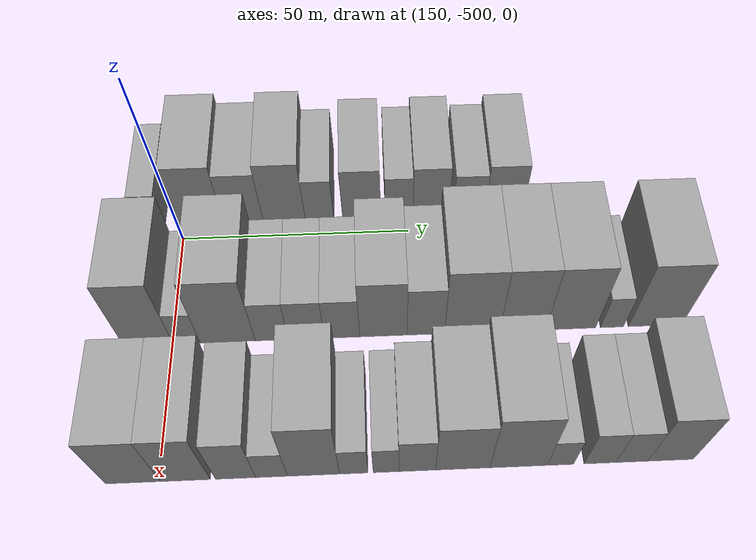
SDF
<sdf version="1.6">
 <world name="default">
  <model name="building_338">
   <static>1</static>
   <pose>137.0000 -507.1311 0 0.000000 0.000000 0.000000</pose>
   <link name="link">
    <pose>0 0 6.00 0 0 0</pose>
    <collision name="collision"><geometry><box><size>20.0000 5.7378 12.0000</size></box></geometry></collision>
    <visual name="visual">
     <cast_shadows>0</cast_shadows>
     <geometry><box><size>20.0000 5.7378 12.0000</size></box></geometry>
     <material>
      <script>
       <uri>model://grey_wall/materials/scripts</uri>
       <uri>model://grey_wall/materials/textures</uri>
       <name>vrc/grey_wall</name>
      </script>
     </material>
    </visual>
   </link>
  </model>
  <model name="building_339">
   <static>1</static>
   <pose>137.0000 -496.1020 0 0.000000 0.000000 0.000000</pose>
   <link name="link">
    <pose>0 0 10.50 0 0 0</pose>
    <collision name="collision"><geometry><box><size>20.0000 10.3204 21.0000</size></box></geometry></collision>
    <visual name="visual">
     <cast_shadows>0</cast_shadows>
     <geometry><box><size>20.0000 10.3204 21.0000</size></box></geometry>
     <material>
      <script>
       <uri>model://grey_wall/materials/scripts</uri>
       <uri>model://grey_wall/materials/textures</uri>
       <name>vrc/grey_wall</name>
      </script>
     </material>
    </visual>
   </link>
  </model>
  <model name="building_340">
   <static>1</static>
   <pose>137.0000 -486.5506 0 0.000000 0.000000 0.000000</pose>
   <link name="link">
    <pose>0 0 9.00 0 0 0</pose>
    <collision name="collision"><geometry><box><size>20.0000 8.7823 18.0000</size></box></geometry></collision>
    <visual name="visual">
     <cast_shadows>0</cast_shadows>
     <geometry><box><size>20.0000 8.7823 18.0000</size></box></geometry>
     <material>
      <script>
       <uri>model://grey_wall/materials/scripts</uri>
       <uri>model://grey_wall/materials/textures</uri>
       <name>vrc/grey_wall</name>
      </script>
     </material>
    </visual>
   </link>
  </model>
  <model name="building_341">
   <static>1</static>
   <pose>137.0000 -477.4898 0 0.000000 0.000000 0.000000</pose>
   <link name="link">
    <pose>0 0 10.50 0 0 0</pose>
    <collision name="collision"><geometry><box><size>20.0000 9.3394 21.0000</size></box></geometry></collision>
    <visual name="visual">
     <cast_shadows>0</cast_shadows>
     <geometry><box><size>20.0000 9.3394 21.0000</size></box></geometry>
     <material>
      <script>
       <uri>model://grey_wall/materials/scripts</uri>
       <uri>model://grey_wall/materials/textures</uri>
       <name>vrc/grey_wall</name>
      </script>
     </material>
    </visual>
   </link>
  </model>
  <model name="building_342">
   <static>1</static>
   <pose>137.0000 -469.6445 0 0.000000 0.000000 0.000000</pose>
   <link name="link">
    <pose>0 0 7.50 0 0 0</pose>
    <collision name="collision"><geometry><box><size>20.0000 6.3512 15.0000</size></box></geometry></collision>
    <visual name="visual">
     <cast_shadows>0</cast_shadows>
     <geometry><box><size>20.0000 6.3512 15.0000</size></box></geometry>
     <material>
      <script>
       <uri>model://grey_wall/materials/scripts</uri>
       <uri>model://grey_wall/materials/textures</uri>
       <name>vrc/grey_wall</name>
      </script>
     </material>
    </visual>
   </link>
  </model>
  <model name="building_343">
   <static>1</static>
   <pose>137.0000 -460.2018 0 0.000000 0.000000 0.000000</pose>
   <link name="link">
    <pose>0 0 9.00 0 0 0</pose>
    <collision name="collision"><geometry><box><size>20.0000 8.5340 18.0000</size></box></geometry></collision>
    <visual name="visual">
     <cast_shadows>0</cast_shadows>
     <geometry><box><size>20.0000 8.5340 18.0000</size></box></geometry>
     <material>
      <script>
       <uri>model://grey_wall/materials/scripts</uri>
       <uri>model://grey_wall/materials/textures</uri>
       <name>vrc/grey_wall</name>
      </script>
     </material>
    </visual>
   </link>
  </model>
  <model name="building_344">
   <static>1</static>
   <pose>137.0000 -451.8562 0 0.000000 0.000000 0.000000</pose>
   <link name="link">
    <pose>0 0 7.50 0 0 0</pose>
    <collision name="collision"><geometry><box><size>20.0000 6.1572 15.0000</size></box></geometry></collision>
    <visual name="visual">
     <cast_shadows>0</cast_shadows>
     <geometry><box><size>20.0000 6.1572 15.0000</size></box></geometry>
     <material>
      <script>
       <uri>model://grey_wall/materials/scripts</uri>
       <uri>model://grey_wall/materials/textures</uri>
       <name>vrc/grey_wall</name>
      </script>
     </material>
    </visual>
   </link>
  </model>
  <model name="building_345">
   <static>1</static>
   <pose>137.0000 -444.7564 0 0.000000 0.000000 0.000000</pose>
   <link name="link">
    <pose>0 0 9.00 0 0 0</pose>
    <collision name="collision"><geometry><box><size>20.0000 8.0424 18.0000</size></box></geometry></collision>
    <visual name="visual">
     <cast_shadows>0</cast_shadows>
     <geometry><box><size>20.0000 8.0424 18.0000</size></box></geometry>
     <material>
      <script>
       <uri>model://grey_wall/materials/scripts</uri>
       <uri>model://grey_wall/materials/textures</uri>
       <name>vrc/grey_wall</name>
      </script>
     </material>
    </visual>
   </link>
  </model>
  <model name="building_346">
   <static>1</static>
   <pose>137.0000 -436.1970 0 0.000000 0.000000 0.000000</pose>
   <link name="link">
    <pose>0 0 7.50 0 0 0</pose>
    <collision name="collision"><geometry><box><size>20.0000 7.0765 15.0000</size></box></geometry></collision>
    <visual name="visual">
     <cast_shadows>0</cast_shadows>
     <geometry><box><size>20.0000 7.0765 15.0000</size></box></geometry>
     <material>
      <script>
       <uri>model://grey_wall/materials/scripts</uri>
       <uri>model://grey_wall/materials/textures</uri>
       <name>vrc/grey_wall</name>
      </script>
     </material>
    </visual>
   </link>
  </model>
  <model name="building_347">
   <static>1</static>
   <pose>137.0000 -428.4018 0 0.000000 0.000000 0.000000</pose>
   <link name="link">
    <pose>0 0 9.00 0 0 0</pose>
    <collision name="collision"><geometry><box><size>20.0000 8.5139 18.0000</size></box></geometry></collision>
    <visual name="visual">
     <cast_shadows>0</cast_shadows>
     <geometry><box><size>20.0000 8.5139 18.0000</size></box></geometry>
     <material>
      <script>
       <uri>model://grey_wall/materials/scripts</uri>
       <uri>model://grey_wall/materials/textures</uri>
       <name>vrc/grey_wall</name>
      </script>
     </material>
    </visual>
   </link>
  </model>
  <model name="building_450">
   <static>1</static>
   <pose>166.0000 -504.8908 0 0.000000 0.000000 0.000000</pose>
   <link name="link">
    <pose>0 0 12.00 0 0 0</pose>
    <collision name="collision"><geometry><box><size>20.0000 10.2185 24.0000</size></box></geometry></collision>
    <visual name="visual">
     <cast_shadows>0</cast_shadows>
     <geometry><box><size>20.0000 10.2185 24.0000</size></box></geometry>
     <material>
      <script>
       <uri>model://grey_wall/materials/scripts</uri>
       <uri>model://grey_wall/materials/textures</uri>
       <name>vrc/grey_wall</name>
      </script>
     </material>
    </visual>
   </link>
  </model>
  <model name="building_451">
   <static>1</static>
   <pose>166.0000 -497.0131 0 0.000000 0.000000 0.000000</pose>
   <link name="link">
    <pose>0 0 6.00 0 0 0</pose>
    <collision name="collision"><geometry><box><size>20.0000 5.5368 12.0000</size></box></geometry></collision>
    <visual name="visual">
     <cast_shadows>0</cast_shadows>
     <geometry><box><size>20.0000 5.5368 12.0000</size></box></geometry>
     <material>
      <script>
       <uri>model://grey_wall/materials/scripts</uri>
       <uri>model://grey_wall/materials/textures</uri>
       <name>vrc/grey_wall</name>
      </script>
     </material>
    </visual>
   </link>
  </model>
  <model name="building_452">
   <static>1</static>
   <pose>166.0000 -488.5651 0 0.000000 0.000000 0.000000</pose>
   <link name="link">
    <pose>0 0 12.00 0 0 0</pose>
    <collision name="collision"><geometry><box><size>20.0000 11.3593 24.0000</size></box></geometry></collision>
    <visual name="visual">
     <cast_shadows>0</cast_shadows>
     <geometry><box><size>20.0000 11.3593 24.0000</size></box></geometry>
     <material>
      <script>
       <uri>model://grey_wall/materials/scripts</uri>
       <uri>model://grey_wall/materials/textures</uri>
       <name>vrc/grey_wall</name>
      </script>
     </material>
    </visual>
   </link>
  </model>
  <model name="building_453">
   <static>1</static>
   <pose>166.0000 -479.4649 0 0.000000 0.000000 0.000000</pose>
   <link name="link">
    <pose>0 0 7.50 0 0 0</pose>
    <collision name="collision"><geometry><box><size>20.0000 6.8411 15.0000</size></box></geometry></collision>
    <visual name="visual">
     <cast_shadows>0</cast_shadows>
     <geometry><box><size>20.0000 6.8411 15.0000</size></box></geometry>
     <material>
      <script>
       <uri>model://grey_wall/materials/scripts</uri>
       <uri>model://grey_wall/materials/textures</uri>
       <name>vrc/grey_wall</name>
      </script>
     </material>
    </visual>
   </link>
  </model>
  <model name="building_454">
   <static>1</static>
   <pose>166.0000 -472.3177 0 0.000000 0.000000 0.000000</pose>
   <link name="link">
    <pose>0 0 7.50 0 0 0</pose>
    <collision name="collision"><geometry><box><size>20.0000 7.4531 15.0000</size></box></geometry></collision>
    <visual name="visual">
     <cast_shadows>0</cast_shadows>
     <geometry><box><size>20.0000 7.4531 15.0000</size></box></geometry>
     <material>
      <script>
       <uri>model://grey_wall/materials/scripts</uri>
       <uri>model://grey_wall/materials/textures</uri>
       <name>vrc/grey_wall</name>
      </script>
     </material>
    </visual>
   </link>
  </model>
  <model name="building_455">
   <static>1</static>
   <pose>166.0000 -464.9196 0 0.000000 0.000000 0.000000</pose>
   <link name="link">
    <pose>0 0 7.50 0 0 0</pose>
    <collision name="collision"><geometry><box><size>20.0000 7.3432 15.0000</size></box></geometry></collision>
    <visual name="visual">
     <cast_shadows>0</cast_shadows>
     <geometry><box><size>20.0000 7.3432 15.0000</size></box></geometry>
     <material>
      <script>
       <uri>model://grey_wall/materials/scripts</uri>
       <uri>model://grey_wall/materials/textures</uri>
       <name>vrc/grey_wall</name>
      </script>
     </material>
    </visual>
   </link>
  </model>
  <model name="building_456">
   <static>1</static>
   <pose>166.0000 -456.3303 0 0.000000 0.000000 0.000000</pose>
   <link name="link">
    <pose>0 0 10.50 0 0 0</pose>
    <collision name="collision"><geometry><box><size>20.0000 9.8352 21.0000</size></box></geometry></collision>
    <visual name="visual">
     <cast_shadows>0</cast_shadows>
     <geometry><box><size>20.0000 9.8352 21.0000</size></box></geometry>
     <material>
      <script>
       <uri>model://grey_wall/materials/scripts</uri>
       <uri>model://grey_wall/materials/textures</uri>
       <name>vrc/grey_wall</name>
      </script>
     </material>
    </visual>
   </link>
  </model>
  <model name="building_457">
   <static>1</static>
   <pose>166.0000 -447.5429 0 0.000000 0.000000 0.000000</pose>
   <link name="link">
    <pose>0 0 9.00 0 0 0</pose>
    <collision name="collision"><geometry><box><size>20.0000 7.7396 18.0000</size></box></geometry></collision>
    <visual name="visual">
     <cast_shadows>0</cast_shadows>
     <geometry><box><size>20.0000 7.7396 18.0000</size></box></geometry>
     <material>
      <script>
       <uri>model://grey_wall/materials/scripts</uri>
       <uri>model://grey_wall/materials/textures</uri>
       <name>vrc/grey_wall</name>
      </script>
     </material>
    </visual>
   </link>
  </model>
  <model name="building_458">
   <static>1</static>
   <pose>166.0000 -437.9318 0 0.000000 0.000000 0.000000</pose>
   <link name="link">
    <pose>0 0 12.00 0 0 0</pose>
    <collision name="collision"><geometry><box><size>20.0000 11.4827 24.0000</size></box></geometry></collision>
    <visual name="visual">
     <cast_shadows>0</cast_shadows>
     <geometry><box><size>20.0000 11.4827 24.0000</size></box></geometry>
     <material>
      <script>
       <uri>model://grey_wall/materials/scripts</uri>
       <uri>model://grey_wall/materials/textures</uri>
       <name>vrc/grey_wall</name>
      </script>
     </material>
    </visual>
   </link>
  </model>
  <model name="building_459">
   <static>1</static>
   <pose>166.0000 -427.3333 0 0.000000 0.000000 0.000000</pose>
   <link name="link">
    <pose>0 0 12.00 0 0 0</pose>
    <collision name="collision"><geometry><box><size>20.0000 9.7144 24.0000</size></box></geometry></collision>
    <visual name="visual">
     <cast_shadows>0</cast_shadows>
     <geometry><box><size>20.0000 9.7144 24.0000</size></box></geometry>
     <material>
      <script>
       <uri>model://grey_wall/materials/scripts</uri>
       <uri>model://grey_wall/materials/textures</uri>
       <name>vrc/grey_wall</name>
      </script>
     </material>
    </visual>
   </link>
  </model>
  <model name="building_460">
   <static>1</static>
   <pose>166.0000 -417.2448 0 0.000000 0.000000 0.000000</pose>
   <link name="link">
    <pose>0 0 12.00 0 0 0</pose>
    <collision name="collision"><geometry><box><size>20.0000 10.4625 24.0000</size></box></geometry></collision>
    <visual name="visual">
     <cast_shadows>0</cast_shadows>
     <geometry><box><size>20.0000 10.4625 24.0000</size></box></geometry>
     <material>
      <script>
       <uri>model://grey_wall/materials/scripts</uri>
       <uri>model://grey_wall/materials/textures</uri>
       <name>vrc/grey_wall</name>
      </script>
     </material>
    </visual>
   </link>
  </model>
  <model name="building_461">
   <static>1</static>
   <pose>166.0000 -408.5825 0 0.000000 0.000000 0.000000</pose>
   <link name="link">
    <pose>0 0 6.00 0 0 0</pose>
    <collision name="collision"><geometry><box><size>20.0000 4.8622 12.0000</size></box></geometry></collision>
    <visual name="visual">
     <cast_shadows>0</cast_shadows>
     <geometry><box><size>20.0000 4.8622 12.0000</size></box></geometry>
     <material>
      <script>
       <uri>model://grey_wall/materials/scripts</uri>
       <uri>model://grey_wall/materials/textures</uri>
       <name>vrc/grey_wall</name>
      </script>
     </material>
    </visual>
   </link>
  </model>
  <model name="building_462">
   <static>1</static>
   <pose>166.0000 -399.5165 0 0.000000 0.000000 0.000000</pose>
   <link name="link">
    <pose>0 0 12.00 0 0 0</pose>
    <collision name="collision"><geometry><box><size>20.0000 11.2697 24.0000</size></box></geometry></collision>
    <visual name="visual">
     <cast_shadows>0</cast_shadows>
     <geometry><box><size>20.0000 11.2697 24.0000</size></box></geometry>
     <material>
      <script>
       <uri>model://grey_wall/materials/scripts</uri>
       <uri>model://grey_wall/materials/textures</uri>
       <name>vrc/grey_wall</name>
      </script>
     </material>
    </visual>
   </link>
  </model>
  <model name="building_553">
   <static>1</static>
   <pose>195.0000 -504.7843 0 0.000000 0.000000 0.000000</pose>
   <link name="link">
    <pose>0 0 10.50 0 0 0</pose>
    <collision name="collision"><geometry><box><size>20.0000 10.4314 21.0000</size></box></geometry></collision>
    <visual name="visual">
     <cast_shadows>0</cast_shadows>
     <geometry><box><size>20.0000 10.4314 21.0000</size></box></geometry>
     <material>
      <script>
       <uri>model://grey_wall/materials/scripts</uri>
       <uri>model://grey_wall/materials/textures</uri>
       <name>vrc/grey_wall</name>
      </script>
     </material>
    </visual>
   </link>
  </model>
  <model name="building_554">
   <static>1</static>
   <pose>195.0000 -494.8892 0 0.000000 0.000000 0.000000</pose>
   <link name="link">
    <pose>0 0 10.50 0 0 0</pose>
    <collision name="collision"><geometry><box><size>20.0000 9.3587 21.0000</size></box></geometry></collision>
    <visual name="visual">
     <cast_shadows>0</cast_shadows>
     <geometry><box><size>20.0000 9.3587 21.0000</size></box></geometry>
     <material>
      <script>
       <uri>model://grey_wall/materials/scripts</uri>
       <uri>model://grey_wall/materials/textures</uri>
       <name>vrc/grey_wall</name>
      </script>
     </material>
    </visual>
   </link>
  </model>
  <model name="building_555">
   <static>1</static>
   <pose>195.0000 -485.4062 0 0.000000 0.000000 0.000000</pose>
   <link name="link">
    <pose>0 0 9.00 0 0 0</pose>
    <collision name="collision"><geometry><box><size>20.0000 7.6072 18.0000</size></box></geometry></collision>
    <visual name="visual">
     <cast_shadows>0</cast_shadows>
     <geometry><box><size>20.0000 7.6072 18.0000</size></box></geometry>
     <material>
      <script>
       <uri>model://grey_wall/materials/scripts</uri>
       <uri>model://grey_wall/materials/textures</uri>
       <name>vrc/grey_wall</name>
      </script>
     </material>
    </visual>
   </link>
  </model>
  <model name="building_556">
   <static>1</static>
   <pose>195.0000 -478.6053 0 0.000000 0.000000 0.000000</pose>
   <link name="link">
    <pose>0 0 6.00 0 0 0</pose>
    <collision name="collision"><geometry><box><size>20.0000 5.9947 12.0000</size></box></geometry></collision>
    <visual name="visual">
     <cast_shadows>0</cast_shadows>
     <geometry><box><size>20.0000 5.9947 12.0000</size></box></geometry>
     <material>
      <script>
       <uri>model://grey_wall/materials/scripts</uri>
       <uri>model://grey_wall/materials/textures</uri>
       <name>vrc/grey_wall</name>
      </script>
     </material>
    </visual>
   </link>
  </model>
  <model name="building_557">
   <static>1</static>
   <pose>195.0000 -470.6420 0 0.000000 0.000000 0.000000</pose>
   <link name="link">
    <pose>0 0 12.00 0 0 0</pose>
    <collision name="collision"><geometry><box><size>20.0000 9.9318 24.0000</size></box></geometry></collision>
    <visual name="visual">
     <cast_shadows>0</cast_shadows>
     <geometry><box><size>20.0000 9.9318 24.0000</size></box></geometry>
     <material>
      <script>
       <uri>model://grey_wall/materials/scripts</uri>
       <uri>model://grey_wall/materials/textures</uri>
       <name>vrc/grey_wall</name>
      </script>
     </material>
    </visual>
   </link>
  </model>
  <model name="building_558">
   <static>1</static>
   <pose>195.0000 -462.9730 0 0.000000 0.000000 0.000000</pose>
   <link name="link">
    <pose>0 0 6.00 0 0 0</pose>
    <collision name="collision"><geometry><box><size>20.0000 5.4063 12.0000</size></box></geometry></collision>
    <visual name="visual">
     <cast_shadows>0</cast_shadows>
     <geometry><box><size>20.0000 5.4063 12.0000</size></box></geometry>
     <material>
      <script>
       <uri>model://grey_wall/materials/scripts</uri>
       <uri>model://grey_wall/materials/textures</uri>
       <name>vrc/grey_wall</name>
      </script>
     </material>
    </visual>
   </link>
  </model>
  <model name="building_559">
   <static>1</static>
   <pose>195.0000 -456.8382 0 0.000000 0.000000 0.000000</pose>
   <link name="link">
    <pose>0 0 6.00 0 0 0</pose>
    <collision name="collision"><geometry><box><size>20.0000 4.8633 12.0000</size></box></geometry></collision>
    <visual name="visual">
     <cast_shadows>0</cast_shadows>
     <geometry><box><size>20.0000 4.8633 12.0000</size></box></geometry>
     <material>
      <script>
       <uri>model://grey_wall/materials/scripts</uri>
       <uri>model://grey_wall/materials/textures</uri>
       <name>vrc/grey_wall</name>
      </script>
     </material>
    </visual>
   </link>
  </model>
  <model name="building_560">
   <static>1</static>
   <pose>195.0000 -450.9000 0 0.000000 0.000000 0.000000</pose>
   <link name="link">
    <pose>0 0 7.50 0 0 0</pose>
    <collision name="collision"><geometry><box><size>20.0000 7.0131 15.0000</size></box></geometry></collision>
    <visual name="visual">
     <cast_shadows>0</cast_shadows>
     <geometry><box><size>20.0000 7.0131 15.0000</size></box></geometry>
     <material>
      <script>
       <uri>model://grey_wall/materials/scripts</uri>
       <uri>model://grey_wall/materials/textures</uri>
       <name>vrc/grey_wall</name>
      </script>
     </material>
    </visual>
   </link>
  </model>
  <model name="building_561">
   <static>1</static>
   <pose>195.0000 -442.1988 0 0.000000 0.000000 0.000000</pose>
   <link name="link">
    <pose>0 0 10.50 0 0 0</pose>
    <collision name="collision"><geometry><box><size>20.0000 10.3893 21.0000</size></box></geometry></collision>
    <visual name="visual">
     <cast_shadows>0</cast_shadows>
     <geometry><box><size>20.0000 10.3893 21.0000</size></box></geometry>
     <material>
      <script>
       <uri>model://grey_wall/materials/scripts</uri>
       <uri>model://grey_wall/materials/textures</uri>
       <name>vrc/grey_wall</name>
      </script>
     </material>
    </visual>
   </link>
  </model>
  <model name="building_562">
   <static>1</static>
   <pose>195.0000 -431.4692 0 0.000000 0.000000 0.000000</pose>
   <link name="link">
    <pose>0 0 12.00 0 0 0</pose>
    <collision name="collision"><geometry><box><size>20.0000 11.0700 24.0000</size></box></geometry></collision>
    <visual name="visual">
     <cast_shadows>0</cast_shadows>
     <geometry><box><size>20.0000 11.0700 24.0000</size></box></geometry>
     <material>
      <script>
       <uri>model://grey_wall/materials/scripts</uri>
       <uri>model://grey_wall/materials/textures</uri>
       <name>vrc/grey_wall</name>
      </script>
     </material>
    </visual>
   </link>
  </model>
  <model name="building_563">
   <static>1</static>
   <pose>195.0000 -423.4018 0 0.000000 0.000000 0.000000</pose>
   <link name="link">
    <pose>0 0 6.00 0 0 0</pose>
    <collision name="collision"><geometry><box><size>20.0000 5.0647 12.0000</size></box></geometry></collision>
    <visual name="visual">
     <cast_shadows>0</cast_shadows>
     <geometry><box><size>20.0000 5.0647 12.0000</size></box></geometry>
     <material>
      <script>
       <uri>model://grey_wall/materials/scripts</uri>
       <uri>model://grey_wall/materials/textures</uri>
       <name>vrc/grey_wall</name>
      </script>
     </material>
    </visual>
   </link>
  </model>
  <model name="building_564">
   <static>1</static>
   <pose>195.0000 -415.8171 0 0.000000 0.000000 0.000000</pose>
   <link name="link">
    <pose>0 0 7.50 0 0 0</pose>
    <collision name="collision"><geometry><box><size>20.0000 6.1049 15.0000</size></box></geometry></collision>
    <visual name="visual">
     <cast_shadows>0</cast_shadows>
     <geometry><box><size>20.0000 6.1049 15.0000</size></box></geometry>
     <material>
      <script>
       <uri>model://grey_wall/materials/scripts</uri>
       <uri>model://grey_wall/materials/textures</uri>
       <name>vrc/grey_wall</name>
      </script>
     </material>
    </visual>
   </link>
  </model>
  <model name="building_565">
   <static>1</static>
   <pose>195.0000 -409.7051 0 0.000000 0.000000 0.000000</pose>
   <link name="link">
    <pose>0 0 7.50 0 0 0</pose>
    <collision name="collision"><geometry><box><size>20.0000 6.1190 15.0000</size></box></geometry></collision>
    <visual name="visual">
     <cast_shadows>0</cast_shadows>
     <geometry><box><size>20.0000 6.1190 15.0000</size></box></geometry>
     <material>
      <script>
       <uri>model://grey_wall/materials/scripts</uri>
       <uri>model://grey_wall/materials/textures</uri>
       <name>vrc/grey_wall</name>
      </script>
     </material>
    </visual>
   </link>
  </model>
  <model name="building_566">
   <static>1</static>
   <pose>195.0000 -402.1871 0 0.000000 0.000000 0.000000</pose>
   <link name="link">
    <pose>0 0 10.50 0 0 0</pose>
    <collision name="collision"><geometry><box><size>20.0000 8.9170 21.0000</size></box></geometry></collision>
    <visual name="visual">
     <cast_shadows>0</cast_shadows>
     <geometry><box><size>20.0000 8.9170 21.0000</size></box></geometry>
     <material>
      <script>
       <uri>model://grey_wall/materials/scripts</uri>
       <uri>model://grey_wall/materials/textures</uri>
       <name>vrc/grey_wall</name>
      </script>
     </material>
    </visual>
   </link>
  </model>
 </world>
</sdf>
